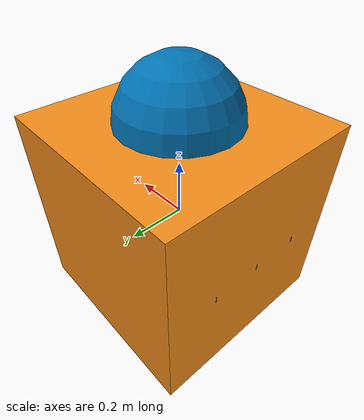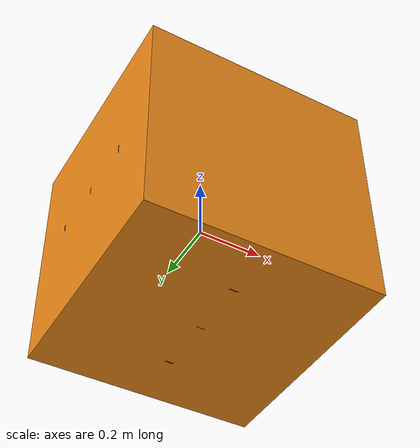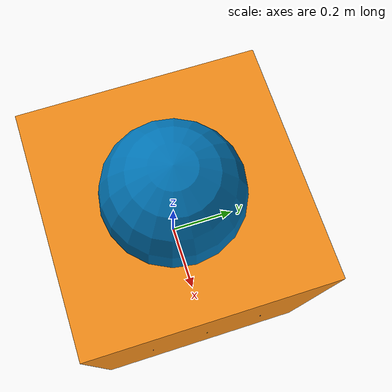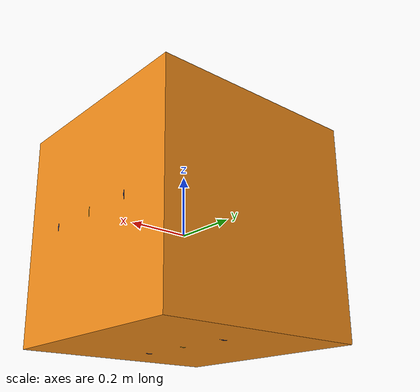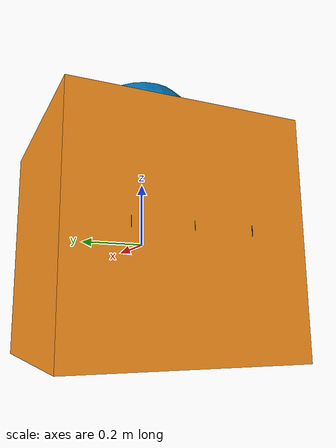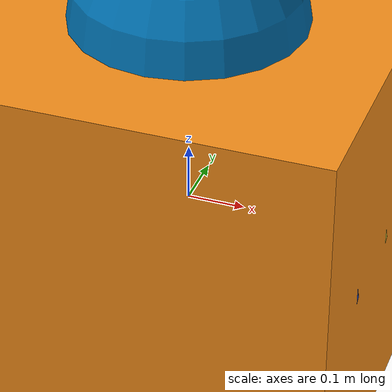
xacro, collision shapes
<?xml version="1.0" ?>
<robot name="bb_8" xmlns:xacro="http://www.ros.org/wiki/xacro">

  <xacro:include filename="$(find bb_8_description)/urdf/materials.xacro" />
  <xacro:include filename="$(find bb_8_description)/urdf/properties.xacro" />
  <xacro:include filename="$(find bb_8_description)/urdf/bb_8.gazebo" />
  <xacro:include filename="$(find bb_8_description)/urdf/macros.xacro" />
  <xacro:include filename="$(find bb_8_description)/urdf/bb_8_dummy.xacro" />
  <xacro:include filename="$(find bb_8_description)/urdf/bb_8_head.xacro" />

  <link name="link_chassis">
    <!-- pose and inertial -->
    <pose>0 0 0 0 0 0</pose>
    <inertial>
      <mass value="${robot_mass}"/>
      <origin rpy="0 0 0" xyz="0 0 0"/>
      <inertia
              ixx="${robot_mass*(8*sphere_radius*sphere_radius)/12}"
                    ixy = "0"
                    ixz = "0"
                    iyy="${robot_mass*(8*sphere_radius*sphere_radius)/12}"
                    iyz = "0"
                    izz="${robot_mass*(8*sphere_radius*sphere_radius)/12}"
        />
    </inertial>
    <!-- body -->
    <collision name="collision_chassis">
      <geometry>
        <box size="${sphere_radius*2.0} ${sphere_radius*2.0} ${sphere_radius*2.0}"/>
      </geometry>
    </collision>

  </link>

  <xacro:link_wheel name="link_right_wheel" r="${sphere_radius}" l="${wheel_thickness}" incr="${wheel_increment}"/>
  <xacro:joint_wheel name="joint_right_wheel" child="link_right_wheel" origin_xyz="0 ${sphere_radius/2.0} 0" />

  <xacro:link_wheel name="link_left_wheel" r="${sphere_radius}" l="${wheel_thickness}" incr="${wheel_increment}"/>
  <xacro:joint_wheel name="joint_left_wheel" child="link_left_wheel" origin_xyz="0 ${-1*sphere_radius/2.0} 0" />

  <xacro:bb_8_dummy  name="bb_8_dummy" parent="link_chassis" r="${sphere_radius}" l="${wheel_thickness}" incr="${wheel_increment}"/>

  <xacro:bb_8_head  parent="link_chassis"/>

</robot>

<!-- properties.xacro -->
<robot xmlns:xacro="http://www.ros.org/wiki/xacro">

	<!-- Constants -->
	<xacro:property name="sphere_radius" value="0.35"/>
    <xacro:property name="wheel_thickness" value="0.001"/>
    <xacro:property name="wheel_increment" value="0.002"/>
    <xacro:property name="robot_mass" value="1.0"/>
    <xacro:property name="head_radius" value="0.2"/>
    <xacro:property name="head_mass" value="0.5"/>

</robot>

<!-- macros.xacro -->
<robot xmlns:xacro="http://www.ros.org/wiki/xacro">

    <!-- Macros -->
    <xacro:macro  name="cylinder_inertia" params="mass r l">
      <inertia  ixx="${mass*(3*r*r+l*l)/12}" ixy = "0" ixz = "0"
                iyy="${mass*(3*r*r+l*l)/12}" iyz = "0"
                izz="${mass*(r*r)/2}" />
    </xacro:macro >

    <xacro:macro name="box_inertia" params="mass x y z">
        <inertia
              ixx="${mass*(y*y+z*z)/12}"
                    ixy = "0"
                    ixz = "0"
                    iyy="${mass*(x*x+z*z)/12}"
                    iyz = "0"
                    izz="${mass*(x*x+z*z)/12}"
        />
      </xacro:macro>

    <xacro:macro name="sphere_inertia" params="mass r">

    <inertia
          ixx="${2*mass*r*r/5}"
    			ixy = "0"
    			ixz = "0"
    			iyy="${2*mass*r*r/5}"
    			iyz = "0"
    			izz="${2*mass*r*r/5}"
    />
  </xacro:macro>

    <xacro:macro  name="link_wheel" params="name r l incr">
        <link name="${name}">
            <inertial>
              <mass value="0.2"/>
              <origin rpy="0 1.5707 1.5707" xyz="0 0 0"/>
               <inertia  ixx="${0.2*(3*r*r+l*l)/12}" ixy = "0" ixz = "0"
                iyy="${0.2*(3*r*r+l*l)/12}" iyz = "0"
                izz="${0.2*(r*r)/2}" />
            </inertial>
            <collision name="link_right_wheel_collision">
              <origin rpy="0 1.5707 1.5707" xyz="0 0 0"/>
              <geometry>
                <cylinder length="${l}" radius="${r + incr}"/>
              </geometry>
            </collision>
        </link>
    </xacro:macro >

    <xacro:macro  name="joint_wheel" params="name child origin_xyz">
      <joint name="${name}" type="continuous">
        <origin rpy="0 0 0" xyz="${origin_xyz}"/>
        <child link="${child}"/>
        <parent link="link_chassis"/>
        <axis rpy="0 0 0" xyz="0 1 0"/>
        <limit effort="10000" velocity="1000"/>
        <joint_properties damping="1.0" friction="1.0"/>
      </joint>
    </xacro:macro >

</robot>

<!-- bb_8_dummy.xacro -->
<robot xmlns:xacro="http://www.ros.org/wiki/xacro">

    <xacro:macro  name="bb_8_dummy" params="name parent l r incr">

            <!-- ros_control plugin -->
              <gazebo>
                <plugin name="gazebo_ros_control"
                        filename="libgazebo_ros_control.so">
                  <robotNamespace>/bb_8</robotNamespace>
                  <robotParam>/robot_description</robotParam>
                  <robotSimType>gazebo_ros_control/DefaultRobotHWSim</robotSimType>
                </plugin>
              </gazebo>

          <link name="${name}_base_direction_link">
            <inertial>
              <mass value="0.2"/>
              <origin rpy="0 1.5707 1.5707" xyz="0 0 0"/>
               <inertia  ixx="${0.2*(3*r*r+l*l)/12}" ixy = "0" ixz = "0"
                iyy="${0.2*(3*r*r+l*l)/12}" iyz = "0"
                izz="${0.2*(r*r)/2}" />
            </inertial>
            <collision name="link_right_wheel_collision">
              <origin rpy="0 1.5707 1.5707" xyz="0 0 0"/>
              <geometry>
                <cylinder length="${l}" radius="${r + incr}"/>
              </geometry>
            </collision>
            <visual>
              <origin rpy="0 0 0" xyz="0 0.0 ${-1*r}" />
              <geometry>
                <mesh filename="package://bb_8_description/meshes/bb8/ball_bb8/ball.dae" scale="1 1 1"/>
              </geometry>
            </visual>
          </link>

          <joint name="direction_joint" type="continuous">
            <origin rpy="0 0 0" xyz="0.0 0.0 0.0" />
            <parent link="${parent}" />
            <child link="${name}_base_direction_link" />
            <axis xyz="0 1 0" />
            <limit effort="1000.0" velocity="100.0" />
          </joint>

        <transmission name="direction_joint_trans">
          <type>transmission_interface/SimpleTransmission</type>
          <joint name="direction_joint">
            <hardwareInterface>hardware_interface/EffortJointInterface</hardwareInterface>
          </joint>
          <actuator name="direction_jointMotor">
            <hardwareInterface>hardware_interface/EffortJointInterface</hardwareInterface>
            <mechanicalReduction>1</mechanicalReduction>
          </actuator>
        </transmission>

    </xacro:macro >

</robot>

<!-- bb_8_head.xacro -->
<robot xmlns:xacro="http://www.ros.org/wiki/xacro">

    <xacro:macro  name="bb_8_head" params="parent">

        <link name="head_link">
            <inertial>
              <origin rpy="0 0 0" xyz="0.0 0.0 0.0" />
              <mass value="${head_mass}" />
              <inertia
                    ixx="${2*head_mass*head_radius*head_radius/5}"
                    ixy = "0"
                    ixz = "0"
                    iyy="${2*head_mass*head_radius*head_radius/5}"
                    iyz = "0"
                    izz="${2*head_mass*head_radius*head_radius/5}"
              />
            </inertial>
            <collision>
              <origin rpy="0 0 0" xyz="0 0 ${sphere_radius}" />
              <geometry>
                <sphere radius="${head_radius}"/>
              </geometry>
            </collision>
            <visual>
              <origin rpy="0 0 3.14" xyz="0 0.0 -${sphere_radius}" />
              <geometry>
                <mesh filename="package://bb_8_description/meshes/bb8/head_bb8/head.dae" scale="1 1 1"/>
              </geometry>
            </visual>
        </link>

          <joint name="head_joint" type="revolute">
            <origin rpy="0 0 0" xyz="0.0 0.0 0." />
            <parent link="${parent}" />
            <child link="head_link" />
            <axis xyz="0 0 1" />
            <limit effort="1.0" velocity="1.0" lower="-1e+16" upper="1e+16"/>
          </joint>

        <transmission name="head_joint_trans">
          <type>transmission_interface/SimpleTransmission</type>
          <joint name="head_joint">
            <hardwareInterface>EffortJointInterface</hardwareInterface>
          </joint>
          <actuator name="head_jointMotor">
            <hardwareInterface>EffortJointInterface</hardwareInterface>
            <mechanicalReduction>1</mechanicalReduction>
          </actuator>
        </transmission>

          <!-- Camera -->
          <link name="camera_link">
          </link>

         <joint name="camera_joint" type="fixed">
            <axis xyz="0 1 0" />
            <origin xyz="0. 0 0.6" rpy="0 0 1.57"/>
            <parent link="head_link"/>
            <child link="camera_link"/>
          </joint>

        <!-- camera -->
        <gazebo reference="camera_link">
            <sensor type="camera" name="camera1">
                <update_rate>30.0</update_rate>
                <camera name="head">
                    <horizontal_fov>1.3962634</horizontal_fov>
                    <image>
                        <width>800</width>
                        <height>800</height>
                        <format>R8G8B8</format>
                    </image>
                    <clip>
                        <near>0.02</near>
                        <far>300</far>
                    </clip>
                    <noise>
                        <type>gaussian</type>
                        <stddev>0.007</stddev>
                    </noise>
                </camera>
                <plugin name="camera_controller" filename="libgazebo_ros_camera.so">
                    <alwaysOn>true</alwaysOn>
                    <updateRate>0.0</updateRate>
                    <cameraName>bb8/camera1</cameraName>
                    <imageTopicName>image_raw</imageTopicName>
                    <cameraInfoTopicName>camera_info</cameraInfoTopicName>
                    <frameName>camera_link</frameName>
                    <hackBaseline>0.07</hackBaseline>
                    <distortionK1>0.0</distortionK1>
                    <distortionK2>0.0</distortionK2>
                    <distortionK3>0.0</distortionK3>
                    <distortionT1>0.0</distortionT1>
                    <distortionT2>0.0</distortionT2>
                </plugin>
            </sensor>
        </gazebo>

    </xacro:macro >

</robot>
